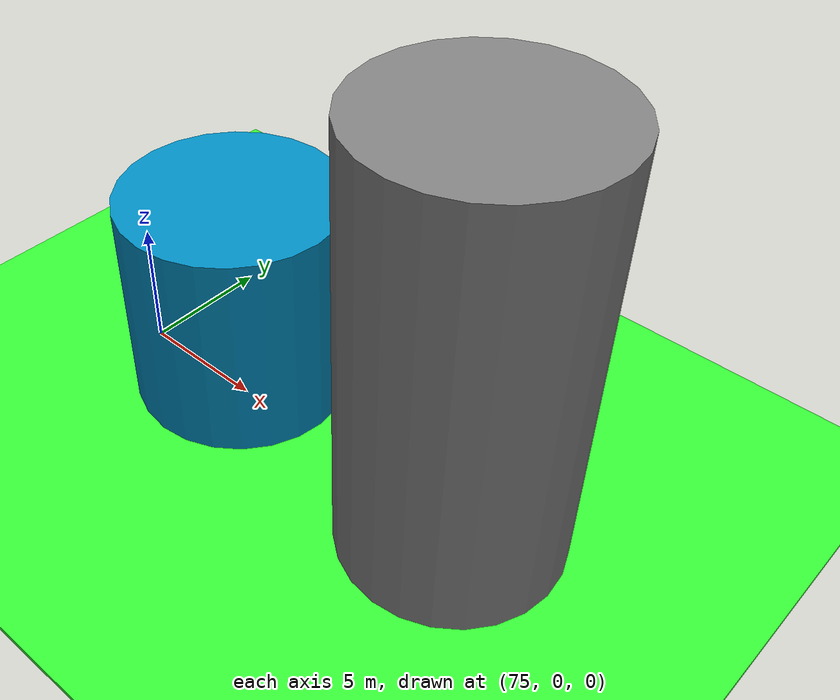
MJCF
<?xml version="1.0"?>
<mujoco>
    <compiler inertiafromgeom="true" angle="degree"/>
    <option gravity="0 0 -9.81" integrator="RK4" timestep="0.05" wind="0 0 0">
        <flag frictionloss="enable" energy="enable" />
    </option>
    <visual>
        <global fovy="45" glow="1.0" />
        <map force="1" />
        <rgba fog="0 0 0 1" />
    </visual>

    <asset>
		<texture type="skybox" builtin="gradient" width="128" height="128" rgb1=".4 .6 .8"
            rgb2="0 0 0"/>
    </asset>

    <worldbody>
        <body name="robot" pos="90 0 0">
            <joint axis="1 0 0" damping="1.0" name="slide_robot_x" pos="0 0 0" type="slide"/>
            <joint axis="0 1 0" damping="1.0" name="slide_robot_y" pos="0 0 0" type="slide"/>
            <joint axis="0 0 1" damping="1.0" name="slide_robot_z" pos="0 0 0" type="slide"/>
            <geom mass="25.0" pos="0 0 8" rgba="0.5 0.5 0.5 1.0" size="4 8.0" type="cylinder"/>
        </body>

        <body name="ball" pos="80 0 0" >
            <joint axis="1 0 0 " damping="1.0" name="ball_x" pos="0 0 0" type="slide"/>
            <joint axis="0 1 0 " damping="1.0" name="ball_y" pos="0 0 0" type="slide"/>
            <joint axis="0 0 1 " damping="1.0" name="ball_z" pos="0 0 0" type="slide"/>
            <geom condim="3" mass="1.0"  pos="0 0 5" friction="0 0 0.5" rgba="0 0.55 0.75 1" size="4 4" type="cylinder"/>
        </body>

        <body name="floor" pos="0 0 -0.1">
            <geom condim="1" size="100 40 0.1" friction="0.5 0.5 0.5" rgba="0.2 1.5 0.2 1" type="box"/>
        </body>

    </worldbody>
    <actuator>
        <velocity gear="35.0" joint="slide_robot_x"/>
        <velocity gear="35.0" joint="slide_robot_y"/>
    </actuator>
</mujoco>
